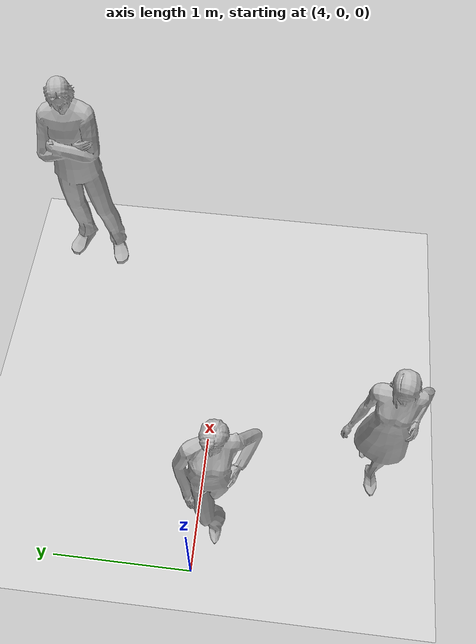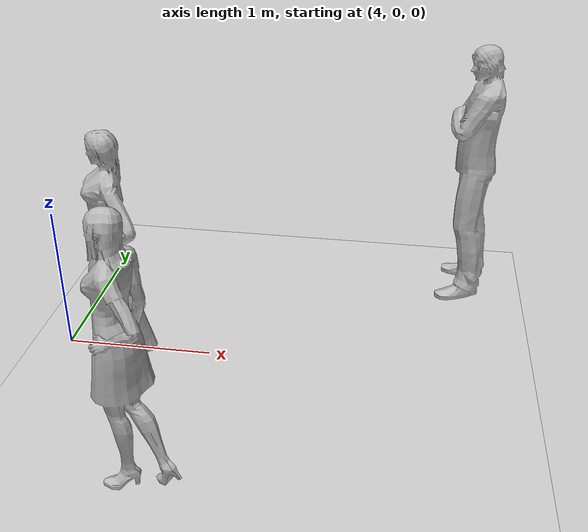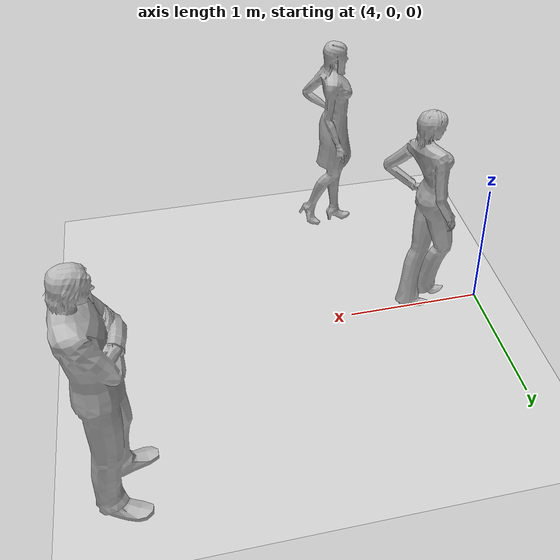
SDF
<sdf version="1.6">
 <world name="default">
  <light name="sun" type="directional">
   <cast_shadows>0</cast_shadows>
   <pose>0 0 10 0 -0 0</pose>
   <diffuse>0.8 0.8 0.8 1</diffuse>
   <specular>0.2 0.2 0.2 1</specular>
   <attenuation>
    <range>1000</range>
    <constant>0.9</constant>
    <linear>0.01</linear>
    <quadratic>0.001</quadratic>
   </attenuation>
   <direction>-0.5 0.1 -0.9</direction>
  </light>
  <model name="ground_plane">
   <static>1</static>
   <link name="link">
    <collision name="collision">
     <geometry><plane><normal>0 0 1</normal><size>100 100</size></plane></geometry>
     <surface><friction><ode><mu>100</mu><mu2>50</mu2></ode></friction></surface>
    </collision>
    <visual name="visual">
     <cast_shadows>0</cast_shadows>
     <geometry><plane><normal>0 0 1</normal><size>100 100</size></plane></geometry>
     <material>
      <script><uri>file://media/materials/scripts/gazebo.material</uri><name>Gazebo/Grey</name></script>
     </material>
    </visual>
   </link>
  </model>
  <gravity>0 0 -9.8</gravity>
  <magnetic_field>6e-06 2.3e-05 -4.2e-05</magnetic_field>
  <atmosphere type="adiabatic"/>
  <physics name="default_physics" default="0" type="ode">
   <max_step_size>0.001</max_step_size>
   <real_time_factor>1</real_time_factor>
   <real_time_update_rate>1000</real_time_update_rate>
  </physics>
  <scene><ambient>0.4 0.4 0.4 1</ambient><background>0.7 0.7 0.7 1</background><shadows>0</shadows></scene>
  <audio><device>default</device></audio>
  <spherical_coordinates>
   <surface_model>EARTH_WGS84</surface_model>
   <latitude_deg>0</latitude_deg>
   <longitude_deg>0</longitude_deg>
   <elevation>0</elevation>
   <heading_deg>0</heading_deg>
  </spherical_coordinates>
  <model name="citizen_extras_male_03">
   <link name="link">
    <inertial>
     <mass>20</mass>
     <inertia><ixx>0</ixx><ixy>0</ixy><ixz>0</ixz><iyy>0</iyy><iyz>0</iyz><izz>0</izz></inertia>
    </inertial>
    <collision name="collision">
     <geometry><mesh><uri>model://citizen_extras_male_03/meshes/mesh.dae</uri></mesh></geometry>
    </collision>
    <visual name="visual">
     <geometry><mesh><uri>model://citizen_extras_male_03/meshes/mesh.dae</uri></mesh></geometry>
    </visual>
   </link>
   <pose>6.69747 1.1547 0.010904 0.012566 0.002312 -1.52784</pose>
  </model>
  <model name="citizen_extras_female_03">
   <link name="link">
    <inertial>
     <mass>20</mass>
     <inertia><ixx>0</ixx><ixy>0</ixy><ixz>0</ixz><iyy>0</iyy><iyz>0</iyz><izz>0</izz></inertia>
    </inertial>
    <collision name="collision">
     <geometry><mesh><uri>model://citizen_extras_female_03/meshes/mesh.dae</uri></mesh></geometry>
    </collision>
    <visual name="visual">
     <geometry><mesh><uri>model://citizen_extras_female_03/meshes/mesh.dae</uri></mesh></geometry>
    </visual>
   </link>
   <pose>4.41595 -0.076151 -0.003511 0.011359 0.012668 -1.60137</pose>
  </model>
  <model name="citizen_extras_female_02">
   <link name="link">
    <inertial>
     <mass>20</mass>
     <inertia><ixx>0</ixx><ixy>0</ixy><ixz>0</ixz><iyy>0</iyy><iyz>0</iyz><izz>0</izz></inertia>
    </inertial>
    <collision name="collision">
     <geometry><mesh><uri>model://citizen_extras_female_02/meshes/mesh.dae</uri></mesh></geometry>
    </collision>
    <visual name="visual">
     <geometry><mesh><uri>model://citizen_extras_female_02/meshes/mesh.dae</uri></mesh></geometry>
    </visual>
   </link>
   <pose>4.92678 -1.19883 0.000421 0.001604 -0.025043 -1.59084</pose>
  </model>
  <light name="user_point_light_0" type="point">
   <pose>2.95325 -0.213428 1 0 -0 0</pose>
   <diffuse>0.5 0.5 0.5 1</diffuse>
   <specular>0.1 0.1 0.1 1</specular>
   <attenuation>
    <range>20</range>
    <constant>0.5</constant>
    <linear>0.01</linear>
    <quadratic>0.001</quadratic>
   </attenuation>
   <cast_shadows>0</cast_shadows>
   <direction>0 0 -1</direction>
  </light>
 </world>
</sdf>
